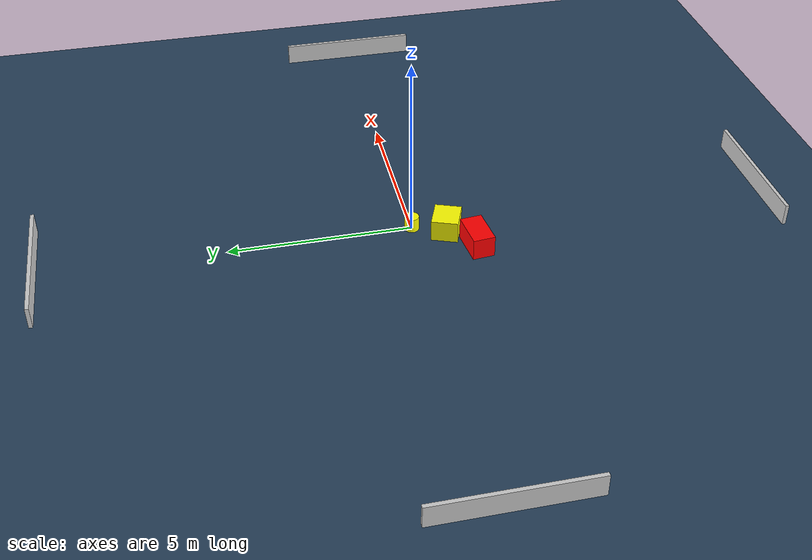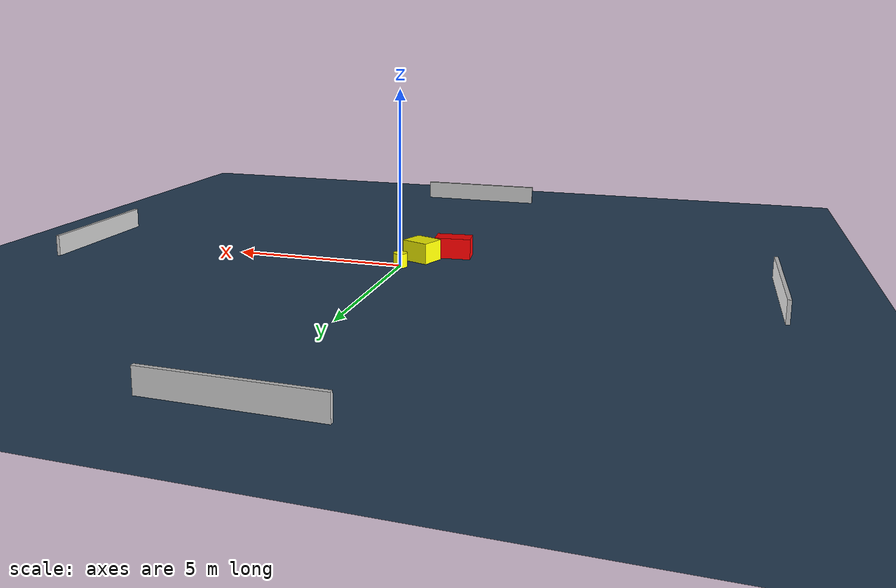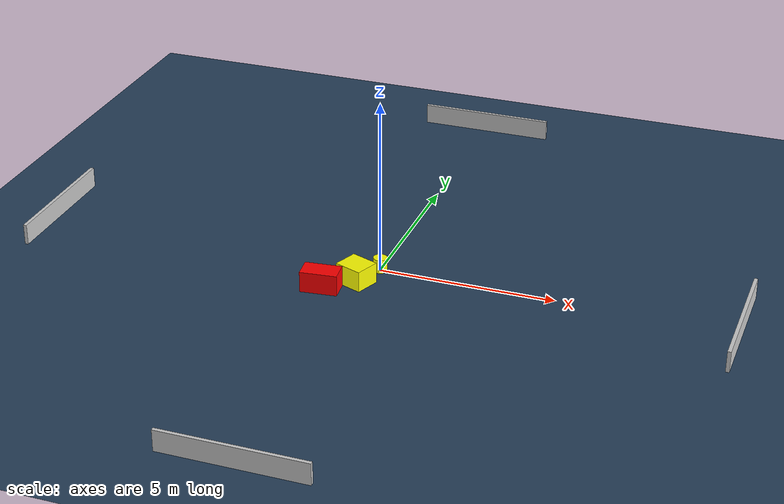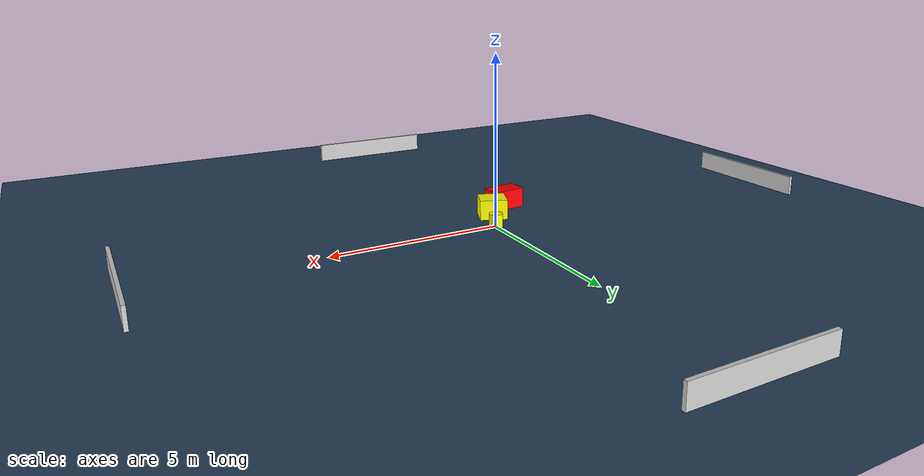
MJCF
<?xml version="1.0" ?>
<mujoco model="generated_environment">
  <option timestep="0.01" integrator="RK4" cone="elliptic"/>
  <default>
    <geom density="1"/>
  </default>
  <asset>
    <texture builtin="gradient" height="3072" name="skybox" rgb1="0.3 0.5 0.7" rgb2="0 0 0" type="skybox" width="512"/>
    <texture builtin="checker" height="300" name="groundplane" rgb1="0.2 0.3 0.4" rgb2="0.1 0.2 0.3" type="2d" width="300"/>
    <material name="groundplane" reflectance="0.2" texrepeat="5 5" texture="groundplane"/>
  </asset>
  <worldbody>
    <light dir="0 0 -1" directional="true" pos="0 0 1.5"/>
    <geom condim="3" friction="0.5 0.005 0.001" material="groundplane" name="floor" pos="0 0 0" size="0 0 0.05" type="plane"/>
    <body name="walls">
      <geom name="wall_1" condim="4" pos="-10.0 0.0 0.3" rgba="0.800000011920929 0.800000011920929 0.800000011920929 1.0" size="0.05 2.0 0.3" type="box"/>
      <geom name="wall_2" condim="4" pos="10.0 0.0 0.3" rgba="0.800000011920929 0.800000011920929 0.800000011920929 1.0" size="0.05 2.0 0.3" type="box"/>
      <geom name="wall_3" condim="4" pos="0.0 -10.0 0.3" rgba="0.800000011920929 0.800000011920929 0.800000011920929 1.0" size="2.0 0.05 0.3" type="box"/>
      <geom name="wall_4" condim="4" pos="0.0 10.0 0.3" rgba="0.800000011920929 0.800000011920929 0.800000011920929 1.0" size="2.0 0.05 0.3" type="box"/>
    </body>
    <body name="robot">
      <joint name="joint_x" type="slide" pos="0 0 0" axis="1 0 0"/>
      <joint name="joint_y" type="slide" pos="0 0 0" axis="0 1 0"/>
      <geom name="robot" type="cylinder" pos="0.0 0.0 0.2" size="0.2 0.2 0.0" mass="5.0" friction="1.0 0.005 0.0001" condim="4" rgba="1.0 1.0 0.0 1.0"/>
    </body>
    <body name="obstacle_1_movable">
      <geom name="obstacle_1_movable" condim="4" pos="-0.37815597477162066 -0.8766074423783193 0.3" euler="0 0 338.93957253982455" friction="0.0 0.005 0.001" rgba="1.0 1.0 0.0 1.0" size="0.408087419346726 0.362109128753877 0.3" type="box" mass="0.1"/>
      <joint type="free"/>
    </body>
    <body name="obstacle_2_static">
      <geom name="obstacle_2_static" condim="4" pos="-1.1604396932860446 -1.5290442417534096 0.3" euler="0 0 185.99705457927445" friction="0.0 0.005 0.001" rgba="1.0 0.0 0.0 1.0" size="0.5211820467473809 0.3016210582595781 0.3" type="box"/>
    </body>
  </worldbody>
  <actuator>
    <motor name="actuator_x" joint="joint_x" gear="1" ctrlrange="-1 1"/>
    <motor name="actuator_y" joint="joint_y" gear="1" ctrlrange="-1 1"/>
  </actuator>
</mujoco>
